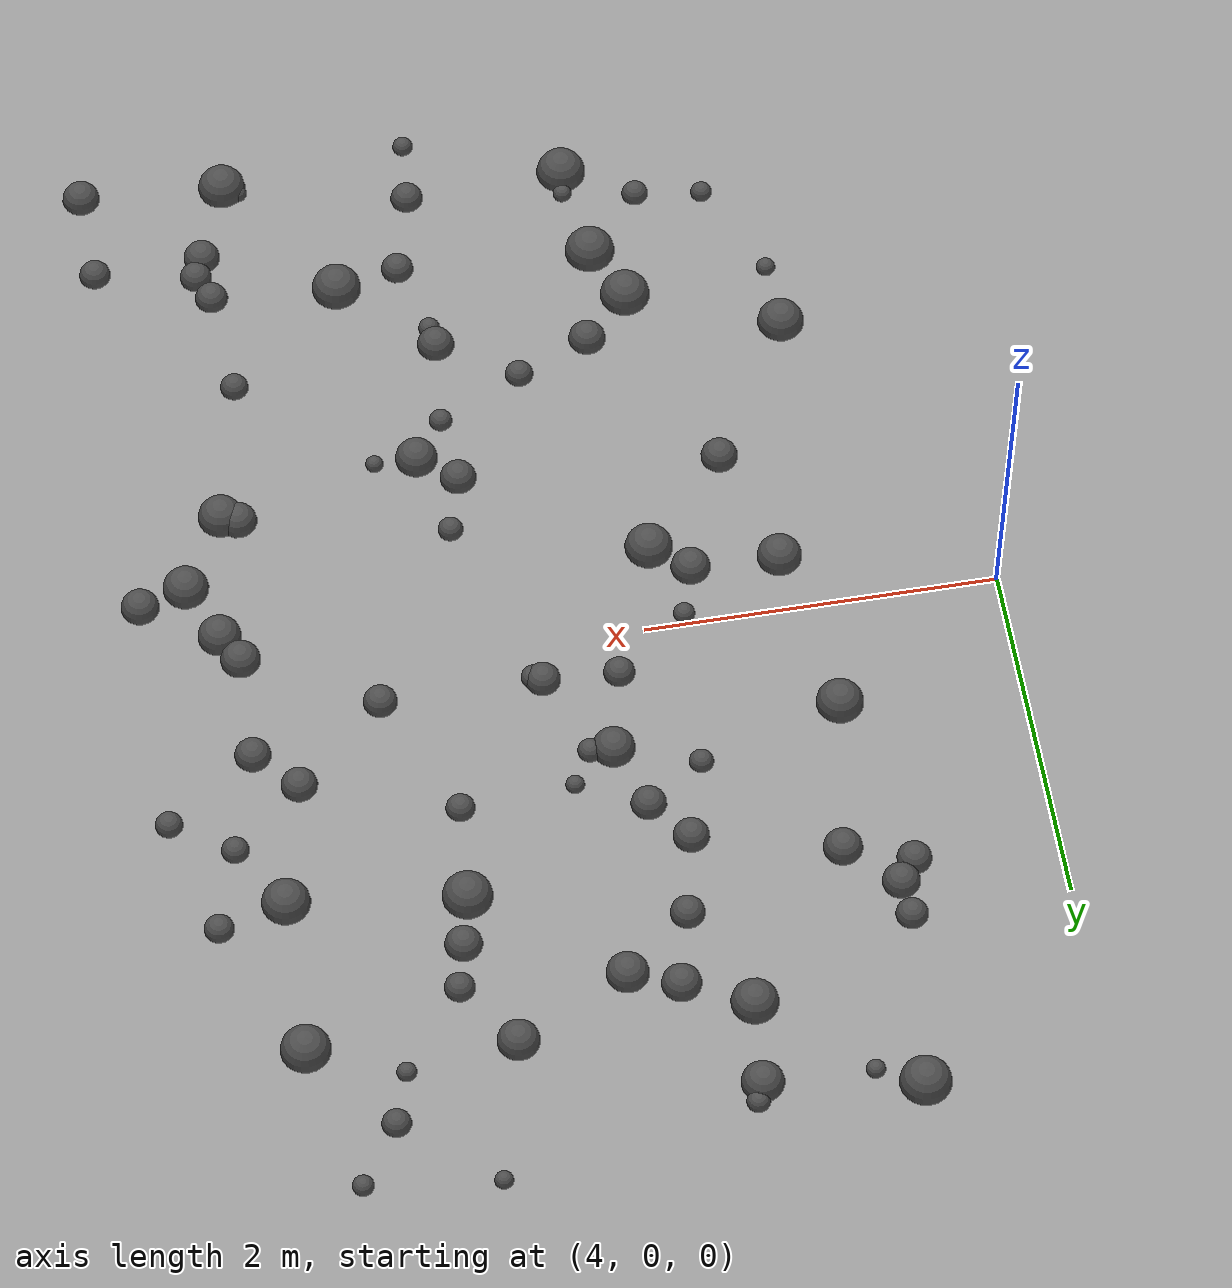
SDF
<sdf version="1.8">
 <world name="bumpy_world">
  <model name="ground_plane">
   <static>true</static>
   <link name="link">
    <collision name="collision">
     <geometry><plane><normal>0 0 1</normal><size>100 100</size></plane></geometry>
    </collision>
    <visual name="visual">
     <geometry><plane><normal>0 0 1</normal><size>100 100</size></plane></geometry>
     <material><ambient>0.6 0.6 0.6 1</ambient><diffuse>0.6 0.6 0.6 1</diffuse></material>
    </visual>
   </link>
  </model>
  <model name="bump_4">
   <static>true</static>
   <pose>6.986050332010324 -2.6280395016797655 0.0 0 0 0</pose>
   <link name="link">
    <collision name="collision">
     <geometry><sphere><radius>0.09240462821692325</radius></sphere></geometry>
    </collision>
    <visual name="visual">
     <geometry><sphere><radius>0.09240462821692325</radius></sphere></geometry>
     <material><ambient>0.3 0.3 0.3 1</ambient><diffuse>0.3 0.3 0.3 1</diffuse></material>
    </visual>
   </link>
  </model>
  <model name="bump_8">
   <static>true</static>
   <pose>5.859642687130846 2.8742961816331247 0.0 0 0 0</pose>
   <link name="link">
    <collision name="collision">
     <geometry><sphere><radius>0.11861812440095729</radius></sphere></geometry>
    </collision>
    <visual name="visual">
     <geometry><sphere><radius>0.11861812440095729</radius></sphere></geometry>
     <material><ambient>0.3 0.3 0.3 1</ambient><diffuse>0.3 0.3 0.3 1</diffuse></material>
    </visual>
   </link>
  </model>
  <model name="bump_17">
   <static>true</static>
   <pose>6.543957091010006 0.9084461011749418 0.0 0 0 0</pose>
   <link name="link">
    <collision name="collision">
     <geometry><sphere><radius>0.05339405705452497</radius></sphere></geometry>
    </collision>
    <visual name="visual">
     <geometry><sphere><radius>0.05339405705452497</radius></sphere></geometry>
     <material><ambient>0.3 0.3 0.3 1</ambient><diffuse>0.3 0.3 0.3 1</diffuse></material>
    </visual>
   </link>
  </model>
  <model name="bump_20">
   <static>true</static>
   <pose>8.129874879859653 -1.0851728351112477 0.0 0 0 0</pose>
   <link name="link">
    <collision name="collision">
     <geometry><sphere><radius>0.10851308828290077</radius></sphere></geometry>
    </collision>
    <visual name="visual">
     <geometry><sphere><radius>0.10851308828290077</radius></sphere></geometry>
     <material><ambient>0.3 0.3 0.3 1</ambient><diffuse>0.3 0.3 0.3 1</diffuse></material>
    </visual>
   </link>
  </model>
  <model name="bump_29">
   <static>true</static>
   <pose>6.166377391203827 1.090518000518764 0.0 0 0 0</pose>
   <link name="link">
    <collision name="collision">
     <geometry><sphere><radius>0.09985885150011696</radius></sphere></geometry>
    </collision>
    <visual name="visual">
     <geometry><sphere><radius>0.09985885150011696</radius></sphere></geometry>
     <material><ambient>0.3 0.3 0.3 1</ambient><diffuse>0.3 0.3 0.3 1</diffuse></material>
    </visual>
   </link>
  </model>
  <model name="bump_30">
   <static>true</static>
   <pose>5.882123819420187 -0.5358113656299093 0.0 0 0 0</pose>
   <link name="link">
    <collision name="collision">
     <geometry><sphere><radius>0.13607748315247437</radius></sphere></geometry>
    </collision>
    <visual name="visual">
     <geometry><sphere><radius>0.13607748315247437</radius></sphere></geometry>
     <material><ambient>0.3 0.3 0.3 1</ambient><diffuse>0.3 0.3 0.3 1</diffuse></material>
    </visual>
   </link>
  </model>
  <model name="bump_31">
   <static>true</static>
   <pose>5.834772160398275 0.876560013550538 0.0 0 0 0</pose>
   <link name="link">
    <collision name="collision">
     <geometry><sphere><radius>0.06928816727679626</radius></sphere></geometry>
    </collision>
    <visual name="visual">
     <geometry><sphere><radius>0.06928816727679626</radius></sphere></geometry>
     <material><ambient>0.3 0.3 0.3 1</ambient><diffuse>0.3 0.3 0.3 1</diffuse></material>
    </visual>
   </link>
  </model>
  <model name="bump_38">
   <static>true</static>
   <pose>5.385022397268878 -1.065936186680203 0.0 0 0 0</pose>
   <link name="link">
    <collision name="collision">
     <geometry><sphere><radius>0.10502367716610353</radius></sphere></geometry>
    </collision>
    <visual name="visual">
     <geometry><sphere><radius>0.10502367716610353</radius></sphere></geometry>
     <material><ambient>0.3 0.3 0.3 1</ambient><diffuse>0.3 0.3 0.3 1</diffuse></material>
    </visual>
   </link>
  </model>
  <model name="bump_43">
   <static>true</static>
   <pose>5.962284292612923 -2.993017639618491 0.0 0 0 0</pose>
   <link name="link">
    <collision name="collision">
     <geometry><sphere><radius>0.0546195513690574</radius></sphere></geometry>
    </collision>
    <visual name="visual">
     <geometry><sphere><radius>0.0546195513690574</radius></sphere></geometry>
     <material><ambient>0.3 0.3 0.3 1</ambient><diffuse>0.3 0.3 0.3 1</diffuse></material>
    </visual>
   </link>
  </model>
  <model name="bump_44">
   <static>true</static>
   <pose>6.296177293382881 0.7128909430342105 0.0 0 0 0</pose>
   <link name="link">
    <collision name="collision">
     <geometry><sphere><radius>0.12033385122150804</radius></sphere></geometry>
    </collision>
    <visual name="visual">
     <geometry><sphere><radius>0.12033385122150804</radius></sphere></geometry>
     <material><ambient>0.3 0.3 0.3 1</ambient><diffuse>0.3 0.3 0.3 1</diffuse></material>
    </visual>
   </link>
  </model>
  <model name="bump_46">
   <static>true</static>
   <pose>5.166333180075391 -2.869356464584389 0.0 0 0 0</pose>
   <link name="link">
    <collision name="collision">
     <geometry><sphere><radius>0.06197686033442445</radius></sphere></geometry>
    </collision>
    <visual name="visual">
     <geometry><sphere><radius>0.06197686033442445</radius></sphere></geometry>
     <material><ambient>0.3 0.3 0.3 1</ambient><diffuse>0.3 0.3 0.3 1</diffuse></material>
    </visual>
   </link>
  </model>
  <model name="bump_55">
   <static>true</static>
   <pose>8.478733972628643 -0.6918168067457517 0.0 0 0 0</pose>
   <link name="link">
    <collision name="collision">
     <geometry><sphere><radius>0.12948555192895028</radius></sphere></geometry>
    </collision>
    <visual name="visual">
     <geometry><sphere><radius>0.12948555192895028</radius></sphere></geometry>
     <material><ambient>0.3 0.3 0.3 1</ambient><diffuse>0.3 0.3 0.3 1</diffuse></material>
    </visual>
   </link>
  </model>
  <model name="bump_58">
   <static>true</static>
   <pose>7.303258439911975 1.786326979089572 0.0 0 0 0</pose>
   <link name="link">
    <collision name="collision">
     <geometry><sphere><radius>0.10442108447215762</radius></sphere></geometry>
    </collision>
    <visual name="visual">
     <geometry><sphere><radius>0.10442108447215762</radius></sphere></geometry>
     <material><ambient>0.3 0.3 0.3 1</ambient><diffuse>0.3 0.3 0.3 1</diffuse></material>
    </visual>
   </link>
  </model>
  <model name="bump_59">
   <static>true</static>
   <pose>8.593356578144437 1.477848193703407 0.0 0 0 0</pose>
   <link name="link">
    <collision name="collision">
     <geometry><sphere><radius>0.08382762462507351</radius></sphere></geometry>
    </collision>
    <visual name="visual">
     <geometry><sphere><radius>0.08382762462507351</radius></sphere></geometry>
     <material><ambient>0.3 0.3 0.3 1</ambient><diffuse>0.3 0.3 0.3 1</diffuse></material>
    </visual>
   </link>
  </model>
  <model name="bump_69">
   <static>true</static>
   <pose>6.411673878166645 -1.7986127388598796 0.0 0 0 0</pose>
   <link name="link">
    <collision name="collision">
     <geometry><sphere><radius>0.08051269885244494</radius></sphere></geometry>
    </collision>
    <visual name="visual">
     <geometry><sphere><radius>0.08051269885244494</radius></sphere></geometry>
     <material><ambient>0.3 0.3 0.3 1</ambient><diffuse>0.3 0.3 0.3 1</diffuse></material>
    </visual>
   </link>
  </model>
  <model name="bump_72">
   <static>true</static>
   <pose>8.439496865026612 1.0107370996487335 0.0 0 0 0</pose>
   <link name="link">
    <collision name="collision">
     <geometry><sphere><radius>0.07745681922337713</radius></sphere></geometry>
    </collision>
    <visual name="visual">
     <geometry><sphere><radius>0.07745681922337713</radius></sphere></geometry>
     <material><ambient>0.3 0.3 0.3 1</ambient><diffuse>0.3 0.3 0.3 1</diffuse></material>
    </visual>
   </link>
  </model>
  <model name="bump_74">
   <static>true</static>
   <pose>8.036774367762323 0.6623960478121784 0.0 0 0 0</pose>
   <link name="link">
    <collision name="collision">
     <geometry><sphere><radius>0.1025925052121281</radius></sphere></geometry>
    </collision>
    <visual name="visual">
     <geometry><sphere><radius>0.1025925052121281</radius></sphere></geometry>
     <material><ambient>0.3 0.3 0.3 1</ambient><diffuse>0.3 0.3 0.3 1</diffuse></material>
    </visual>
   </link>
  </model>
  <model name="bump_75">
   <static>true</static>
   <pose>8.05543637325164 3.13072448044593 0.0 0 0 0</pose>
   <link name="link">
    <collision name="collision">
     <geometry><sphere><radius>0.05987468543487567</radius></sphere></geometry>
    </collision>
    <visual name="visual">
     <geometry><sphere><radius>0.05987468543487567</radius></sphere></geometry>
     <material><ambient>0.3 0.3 0.3 1</ambient><diffuse>0.3 0.3 0.3 1</diffuse></material>
    </visual>
   </link>
  </model>
  <model name="bump_78">
   <static>true</static>
   <pose>5.9722479871555505 1.3281626954364478 0.0 0 0 0</pose>
   <link name="link">
    <collision name="collision">
     <geometry><sphere><radius>0.10197502283126336</radius></sphere></geometry>
    </collision>
    <visual name="visual">
     <geometry><sphere><radius>0.10197502283126336</radius></sphere></geometry>
     <material><ambient>0.3 0.3 0.3 1</ambient><diffuse>0.3 0.3 0.3 1</diffuse></material>
    </visual>
   </link>
  </model>
  <model name="bump_99">
   <static>true</static>
   <pose>6.867712009358482 -2.1936542390114644 0.0 0 0 0</pose>
   <link name="link">
    <collision name="collision">
     <geometry><sphere><radius>0.06180041714824539</radius></sphere></geometry>
    </collision>
    <visual name="visual">
     <geometry><sphere><radius>0.06180041714824539</radius></sphere></geometry>
     <material><ambient>0.3 0.3 0.3 1</ambient><diffuse>0.3 0.3 0.3 1</diffuse></material>
    </visual>
   </link>
  </model>
  <model name="bump_100">
   <static>true</static>
   <pose>7.105513186303753 2.4134970081033806 0.0 0 0 0</pose>
   <link name="link">
    <collision name="collision">
     <geometry><sphere><radius>0.11846577365311108</radius></sphere></geometry>
    </collision>
    <visual name="visual">
     <geometry><sphere><radius>0.11846577365311108</radius></sphere></geometry>
     <material><ambient>0.3 0.3 0.3 1</ambient><diffuse>0.3 0.3 0.3 1</diffuse></material>
    </visual>
   </link>
  </model>
  <model name="bump_106">
   <static>true</static>
   <pose>4.896003765921296 1.793798868112928 0.0 0 0 0</pose>
   <link name="link">
    <collision name="collision">
     <geometry><sphere><radius>0.10546946665457382</radius></sphere></geometry>
    </collision>
    <visual name="visual">
     <geometry><sphere><radius>0.10546946665457382</radius></sphere></geometry>
     <material><ambient>0.3 0.3 0.3 1</ambient><diffuse>0.3 0.3 0.3 1</diffuse></material>
    </visual>
   </link>
  </model>
  <model name="bump_108">
   <static>true</static>
   <pose>8.21340566274562 1.3752197935222288 0.0 0 0 0</pose>
   <link name="link">
    <collision name="collision">
     <geometry><sphere><radius>0.13565722947801195</radius></sphere></geometry>
    </collision>
    <visual name="visual">
     <geometry><sphere><radius>0.13565722947801195</radius></sphere></geometry>
     <material><ambient>0.3 0.3 0.3 1</ambient><diffuse>0.3 0.3 0.3 1</diffuse></material>
    </visual>
   </link>
  </model>
  <model name="bump_111">
   <static>true</static>
   <pose>7.36527298822731 2.044685173458581 0.0 0 0 0</pose>
   <link name="link">
    <collision name="collision">
     <geometry><sphere><radius>0.0855834282188789</radius></sphere></geometry>
    </collision>
    <visual name="visual">
     <geometry><sphere><radius>0.0855834282188789</radius></sphere></geometry>
     <material><ambient>0.3 0.3 0.3 1</ambient><diffuse>0.3 0.3 0.3 1</diffuse></material>
    </visual>
   </link>
  </model>
  <model name="bump_112">
   <static>true</static>
   <pose>5.9890876795191375 -1.9762394789454547 0.0 0 0 0</pose>
   <link name="link">
    <collision name="collision">
     <geometry><sphere><radius>0.1063324666310344</radius></sphere></geometry>
    </collision>
    <visual name="visual">
     <geometry><sphere><radius>0.1063324666310344</radius></sphere></geometry>
     <material><ambient>0.3 0.3 0.3 1</ambient><diffuse>0.3 0.3 0.3 1</diffuse></material>
    </visual>
   </link>
  </model>
  <model name="bump_114">
   <static>true</static>
   <pose>8.241877796756338 -0.18278693281069058 0.0 0 0 0</pose>
   <link name="link">
    <collision name="collision">
     <geometry><sphere><radius>0.11272554224161584</radius></sphere></geometry>
    </collision>
    <visual name="visual">
     <geometry><sphere><radius>0.11272554224161584</radius></sphere></geometry>
     <material><ambient>0.3 0.3 0.3 1</ambient><diffuse>0.3 0.3 0.3 1</diffuse></material>
    </visual>
   </link>
  </model>
  <model name="bump_115">
   <static>true</static>
   <pose>7.818487441859524 -3.299909123307475 0.0 0 0 0</pose>
   <link name="link">
    <collision name="collision">
     <geometry><sphere><radius>0.052124334008856354</radius></sphere></geometry>
    </collision>
    <visual name="visual">
     <geometry><sphere><radius>0.052124334008856354</radius></sphere></geometry>
     <material><ambient>0.3 0.3 0.3 1</ambient><diffuse>0.3 0.3 0.3 1</diffuse></material>
    </visual>
   </link>
  </model>
  <model name="bump_117">
   <static>true</static>
   <pose>5.547685786214627 -2.923979871896486 0.0 0 0 0</pose>
   <link name="link">
    <collision name="collision">
     <geometry><sphere><radius>0.07576032963523438</radius></sphere></geometry>
    </collision>
    <visual name="visual">
     <geometry><sphere><radius>0.07576032963523438</radius></sphere></geometry>
     <material><ambient>0.3 0.3 0.3 1</ambient><diffuse>0.3 0.3 0.3 1</diffuse></material>
    </visual>
   </link>
  </model>
  <model name="bump_118">
   <static>true</static>
   <pose>6.183864259525049 0.24185380989959748 0.0 0 0 0</pose>
   <link name="link">
    <collision name="collision">
     <geometry><sphere><radius>0.0889412741661366</radius></sphere></geometry>
    </collision>
    <visual name="visual">
     <geometry><sphere><radius>0.0889412741661366</radius></sphere></geometry>
     <material><ambient>0.3 0.3 0.3 1</ambient><diffuse>0.3 0.3 0.3 1</diffuse></material>
    </visual>
   </link>
  </model>
  <model name="bump_119">
   <static>true</static>
   <pose>7.235476860038768 1.4967735140409397 0.0 0 0 0</pose>
   <link name="link">
    <collision name="collision">
     <geometry><sphere><radius>0.14052959579452406</radius></sphere></geometry>
    </collision>
    <visual name="visual">
     <geometry><sphere><radius>0.14052959579452406</radius></sphere></geometry>
     <material><ambient>0.3 0.3 0.3 1</ambient><diffuse>0.3 0.3 0.3 1</diffuse></material>
    </visual>
   </link>
  </model>
  <model name="bump_128">
   <static>true</static>
   <pose>4.892445848869229 -2.2916793478984014 0.0 0 0 0</pose>
   <link name="link">
    <collision name="collision">
     <geometry><sphere><radius>0.05508985712318759</radius></sphere></geometry>
    </collision>
    <visual name="visual">
     <geometry><sphere><radius>0.05508985712318759</radius></sphere></geometry>
     <material><ambient>0.3 0.3 0.3 1</ambient><diffuse>0.3 0.3 0.3 1</diffuse></material>
    </visual>
   </link>
  </model>
  <model name="bump_129">
   <static>true</static>
   <pose>6.959968139052647 -0.8327351401922702 0.0 0 0 0</pose>
   <link name="link">
    <collision name="collision">
     <geometry><sphere><radius>0.07199473860067317</radius></sphere></geometry>
    </collision>
    <visual name="visual">
     <geometry><sphere><radius>0.07199473860067317</radius></sphere></geometry>
     <material><ambient>0.3 0.3 0.3 1</ambient><diffuse>0.3 0.3 0.3 1</diffuse></material>
    </visual>
   </link>
  </model>
  <model name="bump_150">
   <static>true</static>
   <pose>6.426654001555429 0.7091696945342152 0.0 0 0 0</pose>
   <link name="link">
    <collision name="collision">
     <geometry><sphere><radius>0.0697784089616947</radius></sphere></geometry>
    </collision>
    <visual name="visual">
     <geometry><sphere><radius>0.0697784089616947</radius></sphere></geometry>
     <material><ambient>0.3 0.3 0.3 1</ambient><diffuse>0.3 0.3 0.3 1</diffuse></material>
    </visual>
   </link>
  </model>
  <model name="bump_157">
   <static>true</static>
   <pose>4.798276441407866 1.6660788533642519 0.0 0 0 0</pose>
   <link name="link">
    <collision name="collision">
     <geometry><sphere><radius>0.09727884114170297</radius></sphere></geometry>
    </collision>
    <visual name="visual">
     <geometry><sphere><radius>0.09727884114170297</radius></sphere></geometry>
     <material><ambient>0.3 0.3 0.3 1</ambient><diffuse>0.3 0.3 0.3 1</diffuse></material>
    </visual>
   </link>
  </model>
  <model name="bump_159">
   <static>true</static>
   <pose>4.877029479009309 2.0024411666559354 0.0 0 0 0</pose>
   <link name="link">
    <collision name="collision">
     <geometry><sphere><radius>0.0901255926564523</radius></sphere></geometry>
    </collision>
    <visual name="visual">
     <geometry><sphere><radius>0.0901255926564523</radius></sphere></geometry>
     <material><ambient>0.3 0.3 0.3 1</ambient><diffuse>0.3 0.3 0.3 1</diffuse></material>
    </visual>
   </link>
  </model>
  <model name="bump_172">
   <static>true</static>
   <pose>8.13699978557754 -2.7588680717057765 0.0 0 0 0</pose>
   <link name="link">
    <collision name="collision">
     <geometry><sphere><radius>0.09179895826121154</radius></sphere></geometry>
    </collision>
    <visual name="visual">
     <geometry><sphere><radius>0.09179895826121154</radius></sphere></geometry>
     <material><ambient>0.3 0.3 0.3 1</ambient><diffuse>0.3 0.3 0.3 1</diffuse></material>
    </visual>
   </link>
  </model>
  <model name="bump_179">
   <static>true</static>
   <pose>4.875971107307409 -1.9101059429646219 0.0 0 0 0</pose>
   <link name="link">
    <collision name="collision">
     <geometry><sphere><radius>0.133326582860747</radius></sphere></geometry>
    </collision>
    <visual name="visual">
     <geometry><sphere><radius>0.133326582860747</radius></sphere></geometry>
     <material><ambient>0.3 0.3 0.3 1</ambient><diffuse>0.3 0.3 0.3 1</diffuse></material>
    </visual>
   </link>
  </model>
  <model name="bump_180">
   <static>true</static>
   <pose>7.518473700219724 0.21144793617269864 0.0 0 0 0</pose>
   <link name="link">
    <collision name="collision">
     <geometry><sphere><radius>0.09689274682472657</radius></sphere></geometry>
    </collision>
    <visual name="visual">
     <geometry><sphere><radius>0.09689274682472657</radius></sphere></geometry>
     <material><ambient>0.3 0.3 0.3 1</ambient><diffuse>0.3 0.3 0.3 1</diffuse></material>
    </visual>
   </link>
  </model>
  <model name="bump_183">
   <static>true</static>
   <pose>7.724793933951883 2.5022639521226244 0.0 0 0 0</pose>
   <link name="link">
    <collision name="collision">
     <geometry><sphere><radius>0.05547115167158422</radius></sphere></geometry>
    </collision>
    <visual name="visual">
     <geometry><sphere><radius>0.05547115167158422</radius></sphere></geometry>
     <material><ambient>0.3 0.3 0.3 1</ambient><diffuse>0.3 0.3 0.3 1</diffuse></material>
    </visual>
   </link>
  </model>
  <model name="bump_199">
   <static>true</static>
   <pose>8.220800649756344 -1.1257890515175597 0.0 0 0 0</pose>
   <link name="link">
    <collision name="collision">
     <geometry><sphere><radius>0.12886932018572955</radius></sphere></geometry>
    </collision>
    <visual name="visual">
     <geometry><sphere><radius>0.12886932018572955</radius></sphere></geometry>
     <material><ambient>0.3 0.3 0.3 1</ambient><diffuse>0.3 0.3 0.3 1</diffuse></material>
    </visual>
   </link>
  </model>
  <model name="bump_200">
   <static>true</static>
   <pose>8.335726896561436 -0.35291860085101456 0.0 0 0 0</pose>
   <link name="link">
    <collision name="collision">
     <geometry><sphere><radius>0.12266681349360055</radius></sphere></geometry>
    </collision>
    <visual name="visual">
     <geometry><sphere><radius>0.12266681349360055</radius></sphere></geometry>
     <material><ambient>0.3 0.3 0.3 1</ambient><diffuse>0.3 0.3 0.3 1</diffuse></material>
    </visual>
   </link>
  </model>
  <model name="bump_203">
   <static>true</static>
   <pose>6.856984347036423 -3.1068905008773173 0.0 0 0 0</pose>
   <link name="link">
    <collision name="collision">
     <geometry><sphere><radius>0.0931466702401203</radius></sphere></geometry>
    </collision>
    <visual name="visual">
     <geometry><sphere><radius>0.0931466702401203</radius></sphere></geometry>
     <material><ambient>0.3 0.3 0.3 1</ambient><diffuse>0.3 0.3 0.3 1</diffuse></material>
    </visual>
   </link>
  </model>
  <model name="bump_204">
   <static>true</static>
   <pose>5.674027519413809 -0.3688180852681362 0.0 0 0 0</pose>
   <link name="link">
    <collision name="collision">
     <geometry><sphere><radius>0.11199967691638596</radius></sphere></geometry>
    </collision>
    <visual name="visual">
     <geometry><sphere><radius>0.11199967691638596</radius></sphere></geometry>
     <material><ambient>0.3 0.3 0.3 1</ambient><diffuse>0.3 0.3 0.3 1</diffuse></material>
    </visual>
   </link>
  </model>
  <model name="bump_206">
   <static>true</static>
   <pose>7.35071316403895 -2.5537511157578465 0.0 0 0 0</pose>
   <link name="link">
    <collision name="collision">
     <geometry><sphere><radius>0.14127745251372245</radius></sphere></geometry>
    </collision>
    <visual name="visual">
     <geometry><sphere><radius>0.14127745251372245</radius></sphere></geometry>
     <material><ambient>0.3 0.3 0.3 1</ambient><diffuse>0.3 0.3 0.3 1</diffuse></material>
    </visual>
   </link>
  </model>
  <model name="bump_209">
   <static>true</static>
   <pose>5.249865674863228 2.896683362428096 0.0 0 0 0</pose>
   <link name="link">
    <collision name="collision">
     <geometry><sphere><radius>0.05414083668406903</radius></sphere></geometry>
    </collision>
    <visual name="visual">
     <geometry><sphere><radius>0.05414083668406903</radius></sphere></geometry>
     <material><ambient>0.3 0.3 0.3 1</ambient><diffuse>0.3 0.3 0.3 1</diffuse></material>
    </visual>
   </link>
  </model>
  <model name="bump_229">
   <static>true</static>
   <pose>5.944891202631917 -3.145610253885194 0.0 0 0 0</pose>
   <link name="link">
    <collision name="collision">
     <geometry><sphere><radius>0.14095356467916204</radius></sphere></geometry>
    </collision>
    <visual name="visual">
     <geometry><sphere><radius>0.14095356467916204</radius></sphere></geometry>
     <material><ambient>0.3 0.3 0.3 1</ambient><diffuse>0.3 0.3 0.3 1</diffuse></material>
    </visual>
   </link>
  </model>
  <model name="bump_233">
   <static>true</static>
   <pose>5.872694355709371 -2.5716821338754956 0.0 0 0 0</pose>
   <link name="link">
    <collision name="collision">
     <geometry><sphere><radius>0.1429844351189925</radius></sphere></geometry>
    </collision>
    <visual name="visual">
     <geometry><sphere><radius>0.1429844351189925</radius></sphere></geometry>
     <material><ambient>0.3 0.3 0.3 1</ambient><diffuse>0.3 0.3 0.3 1</diffuse></material>
    </visual>
   </link>
  </model>
  <model name="bump_243">
   <static>true</static>
   <pose>5.90263364075805 2.983581681165929 0.0 0 0 0</pose>
   <link name="link">
    <collision name="collision">
     <geometry><sphere><radius>0.06487731088402207</radius></sphere></geometry>
    </collision>
    <visual name="visual">
     <geometry><sphere><radius>0.06487731088402207</radius></sphere></geometry>
     <material><ambient>0.3 0.3 0.3 1</ambient><diffuse>0.3 0.3 0.3 1</diffuse></material>
    </visual>
   </link>
  </model>
  <model name="bump_248">
   <static>true</static>
   <pose>5.762581608829354 -0.07481492714910898 0.0 0 0 0</pose>
   <link name="link">
    <collision name="collision">
     <geometry><sphere><radius>0.061368606644011225</radius></sphere></geometry>
    </collision>
    <visual name="visual">
     <geometry><sphere><radius>0.061368606644011225</radius></sphere></geometry>
     <material><ambient>0.3 0.3 0.3 1</ambient><diffuse>0.3 0.3 0.3 1</diffuse></material>
    </visual>
   </link>
  </model>
  <model name="bump_249">
   <static>true</static>
   <pose>8.718651289767916 -3.4112480639126455 0.0 0 0 0</pose>
   <link name="link">
    <collision name="collision">
     <geometry><sphere><radius>0.10729345954986858</radius></sphere></geometry>
    </collision>
    <visual name="visual">
     <geometry><sphere><radius>0.10729345954986858</radius></sphere></geometry>
     <material><ambient>0.3 0.3 0.3 1</ambient><diffuse>0.3 0.3 0.3 1</diffuse></material>
    </visual>
   </link>
  </model>
  <model name="bump_258">
   <static>true</static>
   <pose>8.237880132015786 2.279167843494557 0.0 0 0 0</pose>
   <link name="link">
    <collision name="collision">
     <geometry><sphere><radius>0.139266492169056</radius></sphere></geometry>
    </collision>
    <visual name="visual">
     <geometry><sphere><radius>0.139266492169056</radius></sphere></geometry>
     <material><ambient>0.3 0.3 0.3 1</ambient><diffuse>0.3 0.3 0.3 1</diffuse></material>
    </visual>
   </link>
  </model>
  <model name="bump_261">
   <static>true</static>
   <pose>7.824852953623374 2.795173613624377 0.0 0 0 0</pose>
   <link name="link">
    <collision name="collision">
     <geometry><sphere><radius>0.08161694804235227</radius></sphere></geometry>
    </collision>
    <visual name="visual">
     <geometry><sphere><radius>0.08161694804235227</radius></sphere></geometry>
     <material><ambient>0.3 0.3 0.3 1</ambient><diffuse>0.3 0.3 0.3 1</diffuse></material>
    </visual>
   </link>
  </model>
  <model name="bump_262">
   <static>true</static>
   <pose>8.70774619453008 -2.8699671150878205 0.0 0 0 0</pose>
   <link name="link">
    <collision name="collision">
     <geometry><sphere><radius>0.08935684838510918</radius></sphere></geometry>
    </collision>
    <visual name="visual">
     <geometry><sphere><radius>0.08935684838510918</radius></sphere></geometry>
     <material><ambient>0.3 0.3 0.3 1</ambient><diffuse>0.3 0.3 0.3 1</diffuse></material>
    </visual>
   </link>
  </model>
  <model name="bump_264">
   <static>true</static>
   <pose>5.001080619532132 3.0125065186801976 0.0 0 0 0</pose>
   <link name="link">
    <collision name="collision">
     <geometry><sphere><radius>0.14298530738011594</radius></sphere></geometry>
    </collision>
    <visual name="visual">
     <geometry><sphere><radius>0.14298530738011594</radius></sphere></geometry>
     <material><ambient>0.3 0.3 0.3 1</ambient><diffuse>0.3 0.3 0.3 1</diffuse></material>
    </visual>
   </link>
  </model>
  <model name="bump_271">
   <static>true</static>
   <pose>5.723663864578481 -2.239890515245668 0.0 0 0 0</pose>
   <link name="link">
    <collision name="collision">
     <geometry><sphere><radius>0.14227058999664793</radius></sphere></geometry>
    </collision>
    <visual name="visual">
     <geometry><sphere><radius>0.14227058999664793</radius></sphere></geometry>
     <material><ambient>0.3 0.3 0.3 1</ambient><diffuse>0.3 0.3 0.3 1</diffuse></material>
    </visual>
   </link>
  </model>
  <model name="bump_273">
   <static>true</static>
   <pose>7.187615774159032 0.9504302088153285 0.0 0 0 0</pose>
   <link name="link">
    <collision name="collision">
     <geometry><sphere><radius>0.08174006822331317</radius></sphere></geometry>
    </collision>
    <visual name="visual">
     <geometry><sphere><radius>0.08174006822331317</radius></sphere></geometry>
     <material><ambient>0.3 0.3 0.3 1</ambient><diffuse>0.3 0.3 0.3 1</diffuse></material>
    </visual>
   </link>
  </model>
  <model name="bump_278">
   <static>true</static>
   <pose>6.075110368434752 1.7941804652716096 0.0 0 0 0</pose>
   <link name="link">
    <collision name="collision">
     <geometry><sphere><radius>0.09632235713892487</radius></sphere></geometry>
    </collision>
    <visual name="visual">
     <geometry><sphere><radius>0.09632235713892487</radius></sphere></geometry>
     <material><ambient>0.3 0.3 0.3 1</ambient><diffuse>0.3 0.3 0.3 1</diffuse></material>
    </visual>
   </link>
  </model>
  <model name="bump_280">
   <static>true</static>
   <pose>6.9017659454995135 -1.5606579085486945 0.0 0 0 0</pose>
   <link name="link">
    <collision name="collision">
     <geometry><sphere><radius>0.0665636144259564</radius></sphere></geometry>
    </collision>
    <visual name="visual">
     <geometry><sphere><radius>0.0665636144259564</radius></sphere></geometry>
     <material><ambient>0.3 0.3 0.3 1</ambient><diffuse>0.3 0.3 0.3 1</diffuse></material>
    </visual>
   </link>
  </model>
  <model name="bump_286">
   <static>true</static>
   <pose>6.183336425487457 2.2151131298119715 0.0 0 0 0</pose>
   <link name="link">
    <collision name="collision">
     <geometry><sphere><radius>0.11096130743023766</radius></sphere></geometry>
    </collision>
    <visual name="visual">
     <geometry><sphere><radius>0.11096130743023766</radius></sphere></geometry>
     <material><ambient>0.3 0.3 0.3 1</ambient><diffuse>0.3 0.3 0.3 1</diffuse></material>
    </visual>
   </link>
  </model>
  <model name="bump_293">
   <static>true</static>
   <pose>6.609369127589203 0.2191996825683793 0.0 0 0 0</pose>
   <link name="link">
    <collision name="collision">
     <geometry><sphere><radius>0.09992243170427981</radius></sphere></geometry>
    </collision>
    <visual name="visual">
     <geometry><sphere><radius>0.09992243170427981</radius></sphere></geometry>
     <material><ambient>0.3 0.3 0.3 1</ambient><diffuse>0.3 0.3 0.3 1</diffuse></material>
    </visual>
   </link>
  </model>
  <model name="bump_304">
   <static>true</static>
   <pose>8.746879429016658 -0.6095669846845477 0.0 0 0 0</pose>
   <link name="link">
    <collision name="collision">
     <geometry><sphere><radius>0.10802548133686252</radius></sphere></geometry>
    </collision>
    <visual name="visual">
     <geometry><sphere><radius>0.10802548133686252</radius></sphere></geometry>
     <material><ambient>0.3 0.3 0.3 1</ambient><diffuse>0.3 0.3 0.3 1</diffuse></material>
    </visual>
   </link>
  </model>
  <model name="bump_305">
   <static>true</static>
   <pose>8.068422532567665 -2.6008143957955747 0.0 0 0 0</pose>
   <link name="link">
    <collision name="collision">
     <geometry><sphere><radius>0.0943507308752931</radius></sphere></geometry>
    </collision>
    <visual name="visual">
     <geometry><sphere><radius>0.0943507308752931</radius></sphere></geometry>
     <material><ambient>0.3 0.3 0.3 1</ambient><diffuse>0.3 0.3 0.3 1</diffuse></material>
    </visual>
   </link>
  </model>
  <model name="bump_306">
   <static>true</static>
   <pose>7.205739990478504 1.4688679644793483 0.0 0 0 0</pose>
   <link name="link">
    <collision name="collision">
     <geometry><sphere><radius>0.051106884953052406</radius></sphere></geometry>
    </collision>
    <visual name="visual">
     <geometry><sphere><radius>0.051106884953052406</radius></sphere></geometry>
     <material><ambient>0.3 0.3 0.3 1</ambient><diffuse>0.3 0.3 0.3 1</diffuse></material>
    </visual>
   </link>
  </model>
  <model name="bump_311">
   <static>true</static>
   <pose>5.170904830013876 -0.35760832617032356 0.0 0 0 0</pose>
   <link name="link">
    <collision name="collision">
     <geometry><sphere><radius>0.1271774481458891</radius></sphere></geometry>
    </collision>
    <visual name="visual">
     <geometry><sphere><radius>0.1271774481458891</radius></sphere></geometry>
     <material><ambient>0.3 0.3 0.3 1</ambient><diffuse>0.3 0.3 0.3 1</diffuse></material>
    </visual>
   </link>
  </model>
  <model name="bump_318">
   <static>true</static>
   <pose>6.8488341131264345 -2.07552331118511 0.0 0 0 0</pose>
   <link name="link">
    <collision name="collision">
     <geometry><sphere><radius>0.1061488047167379</radius></sphere></geometry>
    </collision>
    <visual name="visual">
     <geometry><sphere><radius>0.1061488047167379</radius></sphere></geometry>
     <material><ambient>0.3 0.3 0.3 1</ambient><diffuse>0.3 0.3 0.3 1</diffuse></material>
    </visual>
   </link>
  </model>
  <model name="bump_322">
   <static>true</static>
   <pose>7.3148510654684475 3.2201414629348184 0.0 0 0 0</pose>
   <link name="link">
    <collision name="collision">
     <geometry><sphere><radius>0.05215048625669808</radius></sphere></geometry>
    </collision>
    <visual name="visual">
     <geometry><sphere><radius>0.05215048625669808</radius></sphere></geometry>
     <material><ambient>0.3 0.3 0.3 1</ambient><diffuse>0.3 0.3 0.3 1</diffuse></material>
    </visual>
   </link>
  </model>
  <model name="bump_328">
   <static>true</static>
   <pose>8.260929927858278 0.43384033540761013 0.0 0 0 0</pose>
   <link name="link">
    <collision name="collision">
     <geometry><sphere><radius>0.10190610542346076</radius></sphere></geometry>
    </collision>
    <visual name="visual">
     <geometry><sphere><radius>0.10190610542346076</radius></sphere></geometry>
     <material><ambient>0.3 0.3 0.3 1</ambient><diffuse>0.3 0.3 0.3 1</diffuse></material>
    </visual>
   </link>
  </model>
  <model name="bump_333">
   <static>true</static>
   <pose>8.774132856468983 0.7940418259624655 0.0 0 0 0</pose>
   <link name="link">
    <collision name="collision">
     <geometry><sphere><radius>0.0773745415359628</radius></sphere></geometry>
    </collision>
    <visual name="visual">
     <geometry><sphere><radius>0.0773745415359628</radius></sphere></geometry>
     <material><ambient>0.3 0.3 0.3 1</ambient><diffuse>0.3 0.3 0.3 1</diffuse></material>
    </visual>
   </link>
  </model>
  <model name="bump_346">
   <static>true</static>
   <pose>6.8248850007555815 -3.471062653296837 0.0 0 0 0</pose>
   <link name="link">
    <collision name="collision">
     <geometry><sphere><radius>0.05869231166829369</radius></sphere></geometry>
    </collision>
    <visual name="visual">
     <geometry><sphere><radius>0.05869231166829369</radius></sphere></geometry>
     <material><ambient>0.3 0.3 0.3 1</ambient><diffuse>0.3 0.3 0.3 1</diffuse></material>
    </visual>
   </link>
  </model>
  <model name="bump_347">
   <static>true</static>
   <pose>7.903656083841299 -3.357138507311091 0.0 0 0 0</pose>
   <link name="link">
    <collision name="collision">
     <geometry><sphere><radius>0.13562365940207932</radius></sphere></geometry>
    </collision>
    <visual name="visual">
     <geometry><sphere><radius>0.13562365940207932</radius></sphere></geometry>
     <material><ambient>0.3 0.3 0.3 1</ambient><diffuse>0.3 0.3 0.3 1</diffuse></material>
    </visual>
   </link>
  </model>
  <model name="bump_349">
   <static>true</static>
   <pose>7.076160461356956 -1.331990466928811 0.0 0 0 0</pose>
   <link name="link">
    <collision name="collision">
     <geometry><sphere><radius>0.12063692930720067</radius></sphere></geometry>
    </collision>
    <visual name="visual">
     <geometry><sphere><radius>0.12063692930720067</radius></sphere></geometry>
     <material><ambient>0.3 0.3 0.3 1</ambient><diffuse>0.3 0.3 0.3 1</diffuse></material>
    </visual>
   </link>
  </model>
  <model name="bump_355">
   <static>true</static>
   <pose>6.657830418123501 0.195089511007974 0.0 0 0 0</pose>
   <link name="link">
    <collision name="collision">
     <geometry><sphere><radius>0.07017877492618646</radius></sphere></geometry>
    </collision>
    <visual name="visual">
     <geometry><sphere><radius>0.07017877492618646</radius></sphere></geometry>
     <material><ambient>0.3 0.3 0.3 1</ambient><diffuse>0.3 0.3 0.3 1</diffuse></material>
    </visual>
   </link>
  </model>
  <model name="bump_357">
   <static>true</static>
   <pose>5.014254072840672 0.6303265301284364 0.0 0 0 0</pose>
   <link name="link">
    <collision name="collision">
     <geometry><sphere><radius>0.13328927253515593</radius></sphere></geometry>
    </collision>
    <visual name="visual">
     <geometry><sphere><radius>0.13328927253515593</radius></sphere></geometry>
     <material><ambient>0.3 0.3 0.3 1</ambient><diffuse>0.3 0.3 0.3 1</diffuse></material>
    </visual>
   </link>
  </model>
  <model name="bump_358">
   <static>true</static>
   <pose>6.863998794500154 -1.1653265511988433 0.0 0 0 0</pose>
   <link name="link">
    <collision name="collision">
     <geometry><sphere><radius>0.10381290072960653</radius></sphere></geometry>
    </collision>
    <visual name="visual">
     <geometry><sphere><radius>0.10381290072960653</radius></sphere></geometry>
     <material><ambient>0.3 0.3 0.3 1</ambient><diffuse>0.3 0.3 0.3 1</diffuse></material>
    </visual>
   </link>
  </model>
  <model name="bump_364">
   <static>true</static>
   <pose>5.1693001737852216 1.5357009507503818 0.0 0 0 0</pose>
   <link name="link">
    <collision name="collision">
     <geometry><sphere><radius>0.10959465112473991</radius></sphere></geometry>
    </collision>
    <visual name="visual">
     <geometry><sphere><radius>0.10959465112473991</radius></sphere></geometry>
     <material><ambient>0.3 0.3 0.3 1</ambient><diffuse>0.3 0.3 0.3 1</diffuse></material>
    </visual>
   </link>
  </model>
  <model name="bump_366">
   <static>true</static>
   <pose>7.316204985963558 -1.331914439522882 0.0 0 0 0</pose>
   <link name="link">
    <collision name="collision">
     <geometry><sphere><radius>0.050626173424591</radius></sphere></geometry>
    </collision>
    <visual name="visual">
     <geometry><sphere><radius>0.050626173424591</radius></sphere></geometry>
     <material><ambient>0.3 0.3 0.3 1</ambient><diffuse>0.3 0.3 0.3 1</diffuse></material>
    </visual>
   </link>
  </model>
  <model name="bump_368">
   <static>true</static>
   <pose>8.024058337846112 -1.9757632670311258 0.0 0 0 0</pose>
   <link name="link">
    <collision name="collision">
     <geometry><sphere><radius>0.0805786943462597</radius></sphere></geometry>
    </collision>
    <visual name="visual">
     <geometry><sphere><radius>0.0805786943462597</radius></sphere></geometry>
     <material><ambient>0.3 0.3 0.3 1</ambient><diffuse>0.3 0.3 0.3 1</diffuse></material>
    </visual>
   </link>
  </model>
  <model name="bump_371">
   <static>true</static>
   <pose>6.459411861487982 2.1059288686928213 0.0 0 0 0</pose>
   <link name="link">
    <collision name="collision">
     <geometry><sphere><radius>0.11925438822807098</radius></sphere></geometry>
    </collision>
    <visual name="visual">
     <geometry><sphere><radius>0.11925438822807098</radius></sphere></geometry>
     <material><ambient>0.3 0.3 0.3 1</ambient><diffuse>0.3 0.3 0.3 1</diffuse></material>
    </visual>
   </link>
  </model>
  <model name="bump_375">
   <static>true</static>
   <pose>8.085427418929783 -2.8888282986132388 0.0 0 0 0</pose>
   <link name="link">
    <collision name="collision">
     <geometry><sphere><radius>0.10386670441899523</radius></sphere></geometry>
    </collision>
    <visual name="visual">
     <geometry><sphere><radius>0.10386670441899523</radius></sphere></geometry>
     <material><ambient>0.3 0.3 0.3 1</ambient><diffuse>0.3 0.3 0.3 1</diffuse></material>
    </visual>
   </link>
  </model>
  <model name="bump_398">
   <static>true</static>
   <pose>5.814580195094333 2.3923723164227093 0.0 0 0 0</pose>
   <link name="link">
    <collision name="collision">
     <geometry><sphere><radius>0.13179419972245</radius></sphere></geometry>
    </collision>
    <visual name="visual">
     <geometry><sphere><radius>0.13179419972245</radius></sphere></geometry>
     <material><ambient>0.3 0.3 0.3 1</ambient><diffuse>0.3 0.3 0.3 1</diffuse></material>
    </visual>
   </link>
  </model>
 </world>
</sdf>
